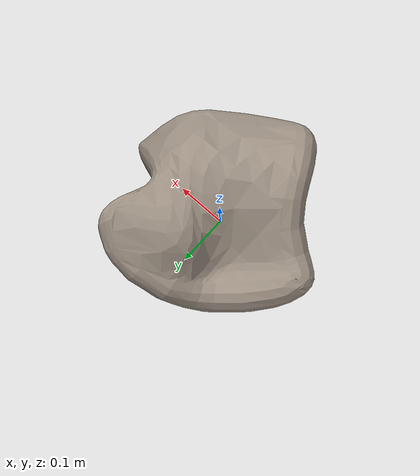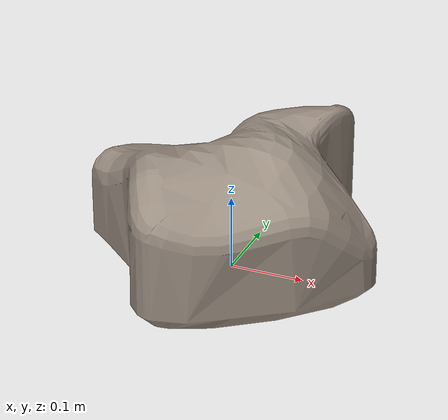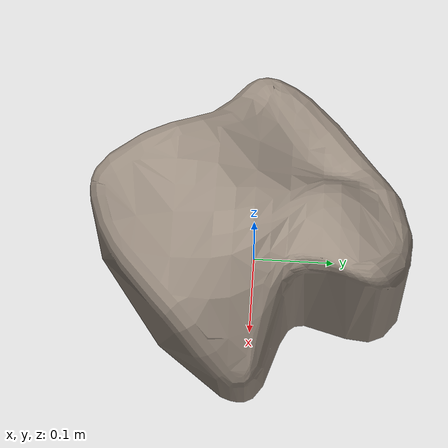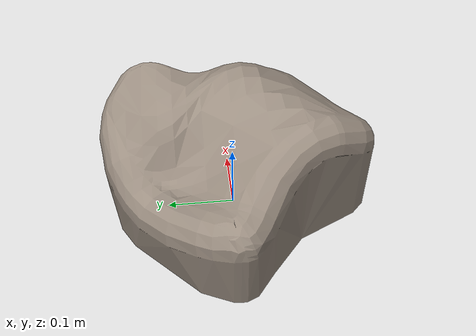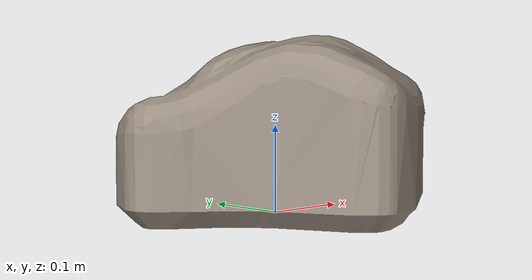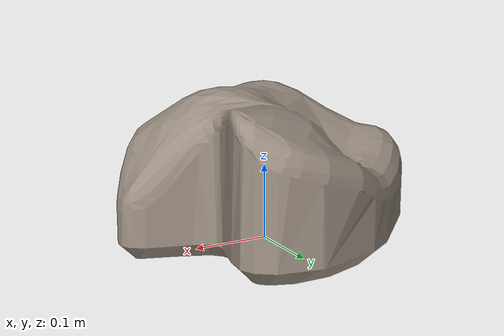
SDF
<?xml version="1.0" ?>
<sdf version="1.8">
  <model name="rock_large">
    <static>true</static>
    <link name="rock_link">
      <visual name="visual">
        <geometry>
          <mesh>
            <uri>model://rock_large/meshes/rock_large.stl</uri>
          </mesh>
        </geometry>
        <material>
          <ambient>0.5 0.45 0.4 1</ambient>
          <diffuse>0.6 0.55 0.5 1</diffuse>
          <specular>0.2 0.2 0.2 1</specular>
        </material>
      </visual>
      <collision name="collision">
        <geometry>
          <mesh>
            <uri>model://rock_large/meshes/rock_large.stl</uri>
          </mesh>
        </geometry>
        <surface>
          <friction>
            <ode>
              <mu>0.8</mu>
              <mu2>0.8</mu2>
            </ode>
          </friction>
        </surface>
      </collision>
    </link>
  </model>
</sdf>
